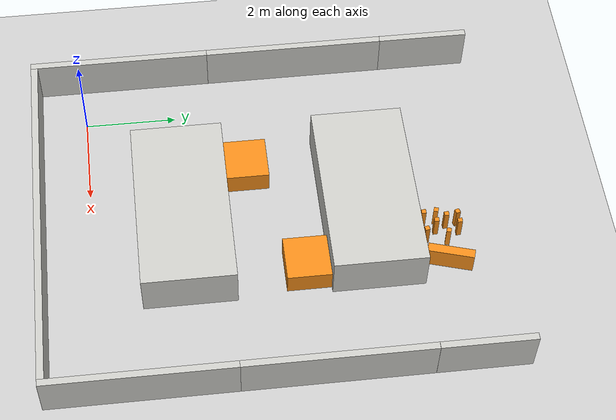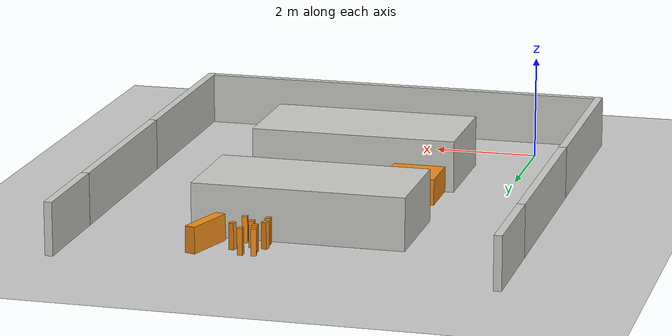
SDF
<sdf version="1.6">
 <world name="default">
  <model name="ground_plane">
   <static>1</static>
   <link name="link">
    <collision name="collision">
     <geometry><plane><normal>0 0 1</normal><size>100 100</size></plane></geometry>
     <surface><friction><ode><mu>100</mu><mu2>50</mu2></ode></friction></surface>
    </collision>
    <visual name="visual">
     <cast_shadows>0</cast_shadows>
     <geometry><plane><normal>0 0 1</normal><size>100 100</size></plane></geometry>
     <material>
      <script><uri>file://media/materials/scripts/concrete.material</uri><name>Concrete/1</name></script>
     </material>
    </visual>
   </link>
  </model>
  <model name="wall_8meter">
   <static>1</static>
   <pose>3 -1.075 0 0 -0 0</pose>
   <link name="Wall">
    <collision name="Wall_Collision">
     <geometry><box><size>8 0.15 1</size></box></geometry>
     <pose>0 0 0.5 0 -0 0</pose>
    </collision>
    <visual name="Wall_Visual">
     <pose>0 0 0.5 0 -0 0</pose>
     <geometry><box><size>8 0.15 1</size></box></geometry>
     <material>
      <script><uri>file://media/materials/scripts/gazebo.material</uri><name>Gazebo/CeilingTiled</name></script>
      <ambient>1 0.764706 0.305882 1</ambient>
     </material>
    </visual>
   </link>
  </model>
  <model name="block_2x4m">
   <pose>3 2 0 0 0 -1.5708</pose>
   <link name="Block">
    <collision name="Block_Collision">
     <geometry><box><size>2 4 1</size></box></geometry>
     <pose>0 0 0.5 0 -0 0</pose>
    </collision>
    <visual name="Block_Visual">
     <pose>0 0 0.5 0 -0 0</pose>
     <geometry><box><size>2 4 1</size></box></geometry>
     <material>
      <script><uri>file://media/materials/scripts/gazebo.material</uri><name>Gazebo/CeilingTiled</name></script>
      <ambient>1 0.764706 0.305882 1</ambient>
     </material>
    </visual>
   </link>
   <static>1</static>
  </model>
  <model name="block_2x4m_clone">
   <pose>3 6 0 0 0 -1.5708</pose>
   <link name="Block">
    <collision name="Block_Collision">
     <geometry><box><size>2 4 1</size></box></geometry>
     <pose>0 0 0.5 0 -0 0</pose>
    </collision>
    <visual name="Block_Visual">
     <pose>0 0 0.5 0 -0 0</pose>
     <geometry><box><size>2 4 1</size></box></geometry>
     <material>
      <script><uri>file://media/materials/scripts/gazebo.material</uri><name>Gazebo/CeilingTiled</name></script>
      <ambient>1 0.764706 0.305882 1</ambient>
     </material>
    </visual>
   </link>
   <static>1</static>
  </model>
  <model name="wall_4meter">
   <static>1</static>
   <pose>7.075 0.850301 0 0 0 -1.5708</pose>
   <link name="Wall">
    <collision name="Wall_Collision">
     <geometry><box><size>4 0.15 1</size></box></geometry>
     <pose>0 0 0.5 0 -0 0</pose>
    </collision>
    <visual name="Wall_Visual">
     <pose>0 0 0.5 0 -0 0</pose>
     <geometry><box><size>4 0.15 1</size></box></geometry>
     <material>
      <script><uri>file://media/materials/scripts/gazebo.material</uri><name>Gazebo/CeilingTiled</name></script>
      <ambient>1 0.764706 0.305882 1</ambient>
     </material>
    </visual>
   </link>
  </model>
  <model name="wall_4meter_clone">
   <static>1</static>
   <pose>7.075 4.84786 0 0 0 -1.5708</pose>
   <link name="Wall">
    <collision name="Wall_Collision">
     <geometry><box><size>4 0.15 1</size></box></geometry>
     <pose>0 0 0.5 0 -0 0</pose>
    </collision>
    <visual name="Wall_Visual">
     <pose>0 0 0.5 0 -0 0</pose>
     <geometry><box><size>4 0.15 1</size></box></geometry>
     <material>
      <script><uri>file://media/materials/scripts/gazebo.material</uri><name>Gazebo/CeilingTiled</name></script>
      <ambient>1 0.764706 0.305882 1</ambient>
     </material>
    </visual>
   </link>
  </model>
  <model name="wall_2meter">
   <static>1</static>
   <pose>7.075 7.84902 0 0 0 -1.5708</pose>
   <link name="Wall">
    <collision name="Wall_Collision">
     <geometry><box><size>2 0.15 1</size></box></geometry>
     <pose>0 0 0.5 0 -0 0</pose>
    </collision>
    <visual name="Wall_Visual">
     <pose>0 0 0.5 0 -0 0</pose>
     <geometry><box><size>2 0.15 1</size></box></geometry>
     <material>
      <script><uri>file://media/materials/scripts/gazebo.material</uri><name>Gazebo/CeilingTiled</name></script>
      <ambient>1 0.764706 0.305882 1</ambient>
     </material>
    </visual>
   </link>
  </model>
  <model name="wall_4meter_clone_0">
   <static>1</static>
   <pose>-1.075 0.850891 0 0 0 -1.5708</pose>
   <link name="Wall">
    <collision name="Wall_Collision">
     <geometry><box><size>4 0.15 1</size></box></geometry>
     <pose>0 0 0.5 0 -0 0</pose>
    </collision>
    <visual name="Wall_Visual">
     <pose>0 0 0.5 0 -0 0</pose>
     <geometry><box><size>4 0.15 1</size></box></geometry>
     <material>
      <script><uri>file://media/materials/scripts/gazebo.material</uri><name>Gazebo/CeilingTiled</name></script>
      <ambient>1 0.764706 0.305882 1</ambient>
     </material>
    </visual>
   </link>
  </model>
  <model name="wall_4meter_clone_0_clone">
   <static>1</static>
   <pose>-1.075 4.85066 0 0 0 -1.5708</pose>
   <link name="Wall">
    <collision name="Wall_Collision">
     <geometry><box><size>4 0.15 1</size></box></geometry>
     <pose>0 0 0.5 0 -0 0</pose>
    </collision>
    <visual name="Wall_Visual">
     <pose>0 0 0.5 0 -0 0</pose>
     <geometry><box><size>4 0.15 1</size></box></geometry>
     <material>
      <script><uri>file://media/materials/scripts/gazebo.material</uri><name>Gazebo/CeilingTiled</name></script>
      <ambient>1 0.764706 0.305882 1</ambient>
     </material>
    </visual>
   </link>
  </model>
  <model name="wall_2meter_clone_0_clone_0">
   <static>1</static>
   <pose>-1.075 7.84536 0 0 0 -1.5708</pose>
   <link name="Wall">
    <collision name="Wall_Collision">
     <geometry><box><size>2 0.15 1</size></box></geometry>
     <pose>0 0 0.5 0 -0 0</pose>
    </collision>
    <visual name="Wall_Visual">
     <pose>0 0 0.5 0 -0 0</pose>
     <geometry><box><size>2 0.15 1</size></box></geometry>
     <material>
      <script><uri>file://media/materials/scripts/gazebo.material</uri><name>Gazebo/CeilingTiled</name></script>
      <ambient>1 0.764706 0.305882 1</ambient>
     </material>
    </visual>
   </link>
  </model>
  <model name="caution_100cm_wall">
   <static>1</static>
   <pose>4.54751 7.58049 0 0 -0 1.27892</pose>
   <static>1</static>
   <link name="Wall">
    <collision name="Wall_Collision">
     <geometry><box><size>1 0.2 0.5</size></box></geometry>
     <pose>0 0 0.25 0 -0 0</pose>
    </collision>
    <visual name="Wall_Visual">
     <pose>0 0 0.25 0 -0 0</pose>
     <geometry><box><size>1 0.2 0.5</size></box></geometry>
     <material>
      <script><uri>file://media/materials/scripts/caution.material</uri><name>Caution/Orange4</name></script>
      <ambient>1 1 1 1</ambient>
     </material>
    </visual>
   </link>
  </model>
  <model name="caution_10cm_pillar">
   <static>1</static>
   <pose>3.92812 7.16558 0 0 -0 0.184134</pose>
   <static>1</static>
   <link name="Pillar">
    <collision name="Pillar_Collision">
     <geometry><box><size>0.1 0.1 0.5</size></box></geometry>
     <pose>0 0 0.25 0 -0 0</pose>
    </collision>
    <visual name="Pillar_Visual">
     <pose>0 0 0.25 0 -0 0</pose>
     <geometry><box><size>0.1 0.1 0.5</size></box></geometry>
     <material>
      <script><uri>file://media/materials/scripts/caution.material</uri><name>Caution/Orange3</name></script>
      <ambient>1 1 1 1</ambient>
     </material>
    </visual>
   </link>
  </model>
  <model name="caution_10cm_pillar_clone">
   <static>1</static>
   <pose>4.02522 7.62142 0 0 0 -0.279506</pose>
   <static>1</static>
   <link name="Pillar">
    <collision name="Pillar_Collision">
     <geometry><box><size>0.1 0.1 0.5</size></box></geometry>
     <pose>0 0 0.25 0 -0 0</pose>
    </collision>
    <visual name="Pillar_Visual">
     <pose>0 0 0.25 0 -0 0</pose>
     <geometry><box><size>0.1 0.1 0.5</size></box></geometry>
     <material>
      <script><uri>file://media/materials/scripts/caution.material</uri><name>Caution/Orange3</name></script>
      <ambient>1 1 1 1</ambient>
     </material>
    </visual>
   </link>
  </model>
  <model name="caution_10cm_pillar_clone_2">
   <static>1</static>
   <pose>3.55698 7.88924 0 0 -0 0.280434</pose>
   <static>1</static>
   <link name="Pillar">
    <collision name="Pillar_Collision">
     <geometry><box><size>0.1 0.1 0.5</size></box></geometry>
     <pose>0 0 0.25 0 -0 0</pose>
    </collision>
    <visual name="Pillar_Visual">
     <pose>0 0 0.25 0 -0 0</pose>
     <geometry><box><size>0.1 0.1 0.5</size></box></geometry>
     <material>
      <script><uri>file://media/materials/scripts/caution.material</uri><name>Caution/Orange3</name></script>
      <ambient>1 1 1 1</ambient>
     </material>
    </visual>
   </link>
  </model>
  <model name="caution_10cm_pillar_clone_3">
   <static>1</static>
   <pose>3.4717 7.43535 0 0 0 -0.307038</pose>
   <static>1</static>
   <link name="Pillar">
    <collision name="Pillar_Collision">
     <geometry><box><size>0.1 0.1 0.5</size></box></geometry>
     <pose>0 0 0.25 0 -0 0</pose>
    </collision>
    <visual name="Pillar_Visual">
     <pose>0 0 0.25 0 -0 0</pose>
     <geometry><box><size>0.1 0.1 0.5</size></box></geometry>
     <material>
      <script><uri>file://media/materials/scripts/caution.material</uri><name>Caution/Orange3</name></script>
      <ambient>1 1 1 1</ambient>
     </material>
    </visual>
   </link>
  </model>
  <model name="caution_100cm_block">
   <static>1</static>
   <pose>1.66692 3.47808 0 0 -0 0</pose>
   <static>1</static>
   <link name="Block">
    <collision name="Block_Collision">
     <geometry><box><size>1 0.95 0.5</size></box></geometry>
     <pose>0 0 0.25 0 -0 0</pose>
    </collision>
    <visual name="Block_Visual">
     <pose>0 0 0.25 0 -0 0</pose>
     <geometry><box><size>1 0.95 0.5</size></box></geometry>
     <material>
      <script><uri>file://media/materials/scripts/caution.material</uri><name>Caution/Orange4</name></script>
      <ambient>1 1 1 1</ambient>
     </material>
    </visual>
   </link>
  </model>
  <model name="caution_100cm_block_0">
   <static>1</static>
   <pose>4.38063 4.52266 0 0 -0 0</pose>
   <static>1</static>
   <link name="Block">
    <collision name="Block_Collision">
     <geometry><box><size>1 0.95 0.5</size></box></geometry>
     <pose>0 0 0.25 0 -0 0</pose>
    </collision>
    <visual name="Block_Visual">
     <pose>0 0 0.25 0 -0 0</pose>
     <geometry><box><size>1 0.95 0.5</size></box></geometry>
     <material>
      <script><uri>file://media/materials/scripts/caution.material</uri><name>Caution/Orange4</name></script>
      <ambient>1 1 1 1</ambient>
     </material>
    </visual>
   </link>
  </model>
  <model name="caution_10cm_pillar_1">
   <static>1</static>
   <pose>3.49242 7.16118 0 0 -0 0</pose>
   <static>1</static>
   <link name="Pillar">
    <collision name="Pillar_Collision">
     <geometry><box><size>0.1 0.1 0.5</size></box></geometry>
     <pose>0 0 0.25 0 -0 0</pose>
    </collision>
    <visual name="Pillar_Visual">
     <pose>0 0 0.25 0 -0 0</pose>
     <geometry><box><size>0.1 0.1 0.5</size></box></geometry>
     <material>
      <script><uri>file://media/materials/scripts/caution.material</uri><name>Caution/Orange3</name></script>
      <ambient>1 1 1 1</ambient>
     </material>
    </visual>
   </link>
  </model>
  <model name="caution_10cm_pillar_2_clone">
   <static>1</static>
   <pose>3.59741 7.64202 0 0 -0 0</pose>
   <static>1</static>
   <link name="Pillar">
    <collision name="Pillar_Collision">
     <geometry><box><size>0.1 0.1 0.5</size></box></geometry>
     <pose>0 0 0.25 0 -0 0</pose>
    </collision>
    <visual name="Pillar_Visual">
     <pose>0 0 0.25 0 -0 0</pose>
     <geometry><box><size>0.1 0.1 0.5</size></box></geometry>
     <material>
      <script><uri>file://media/materials/scripts/caution.material</uri><name>Caution/Orange3</name></script>
      <ambient>1 1 1 1</ambient>
     </material>
    </visual>
   </link>
  </model>
  <model name="caution_10cm_pillar_2_clone_0">
   <static>1</static>
   <pose>3.79788 7.8996 0 0 -0 0</pose>
   <static>1</static>
   <link name="Pillar">
    <collision name="Pillar_Collision">
     <geometry><box><size>0.1 0.1 0.5</size></box></geometry>
     <pose>0 0 0.25 0 -0 0</pose>
    </collision>
    <visual name="Pillar_Visual">
     <pose>0 0 0.25 0 -0 0</pose>
     <geometry><box><size>0.1 0.1 0.5</size></box></geometry>
     <material>
      <script><uri>file://media/materials/scripts/caution.material</uri><name>Caution/Orange3</name></script>
      <ambient>1 1 1 1</ambient>
     </material>
    </visual>
   </link>
  </model>
  <model name="caution_10cm_pillar_2_clone_1">
   <static>1</static>
   <pose>3.72798 7.40404 0 0 -0 0</pose>
   <static>1</static>
   <link name="Pillar">
    <collision name="Pillar_Collision">
     <geometry><box><size>0.1 0.1 0.5</size></box></geometry>
     <pose>0 0 0.25 0 -0 0</pose>
    </collision>
    <visual name="Pillar_Visual">
     <pose>0 0 0.25 0 -0 0</pose>
     <geometry><box><size>0.1 0.1 0.5</size></box></geometry>
     <material>
      <script><uri>file://media/materials/scripts/caution.material</uri><name>Caution/Orange3</name></script>
      <ambient>1 1 1 1</ambient>
     </material>
    </visual>
   </link>
  </model>
 </world>
</sdf>
